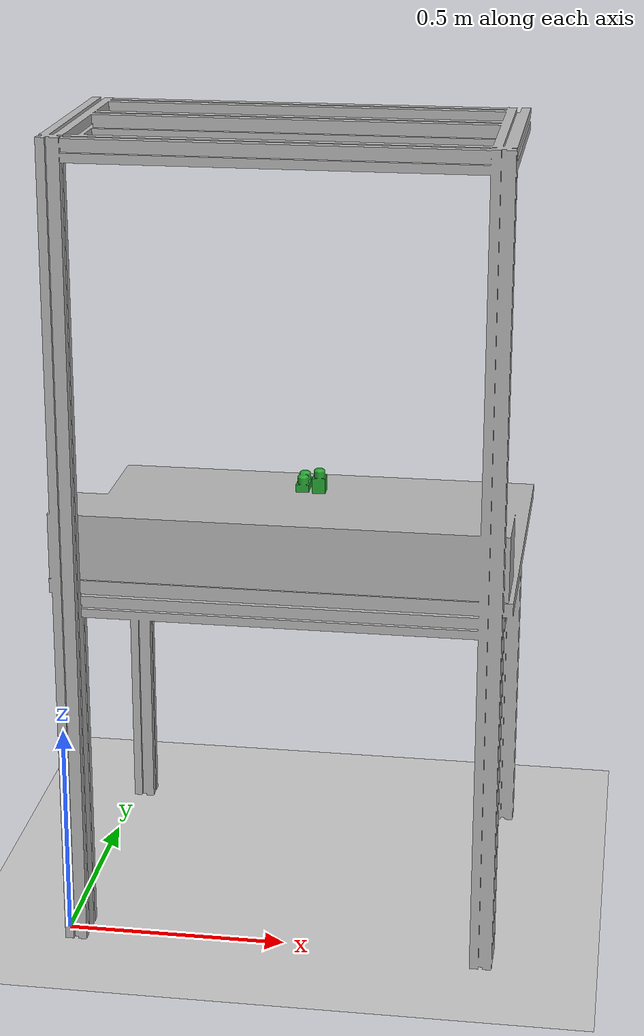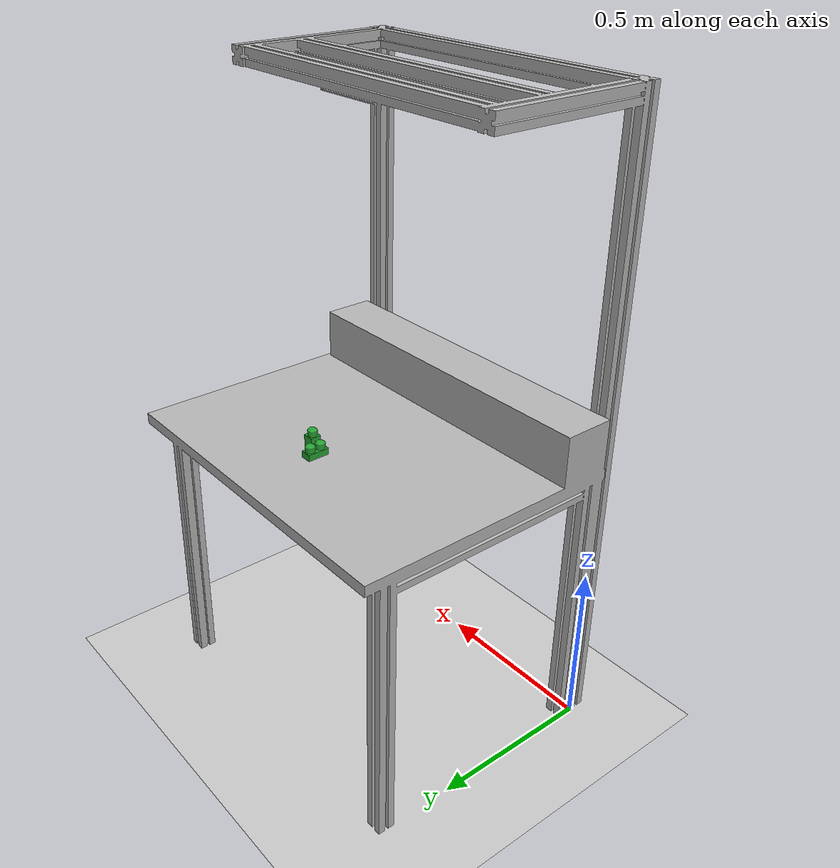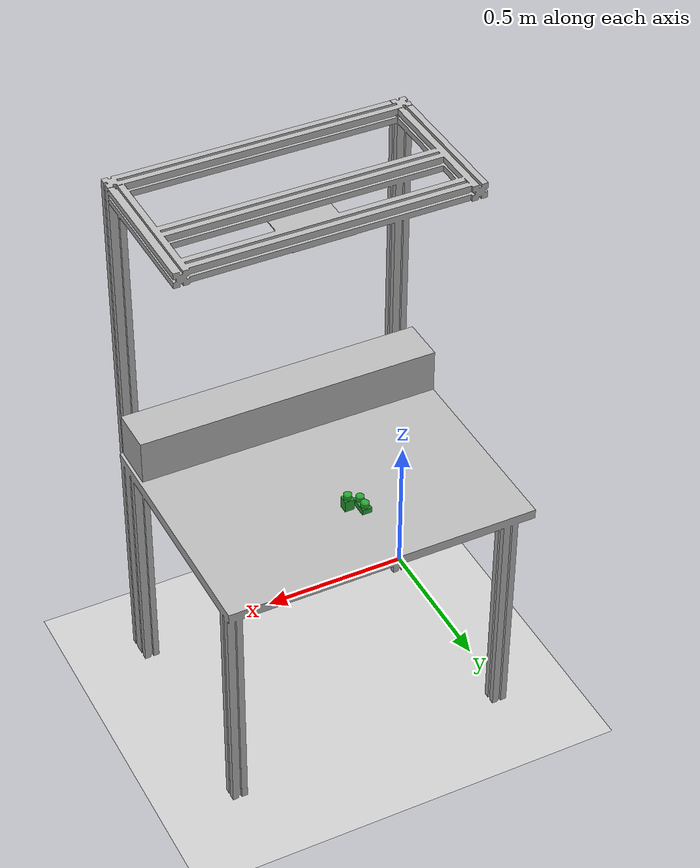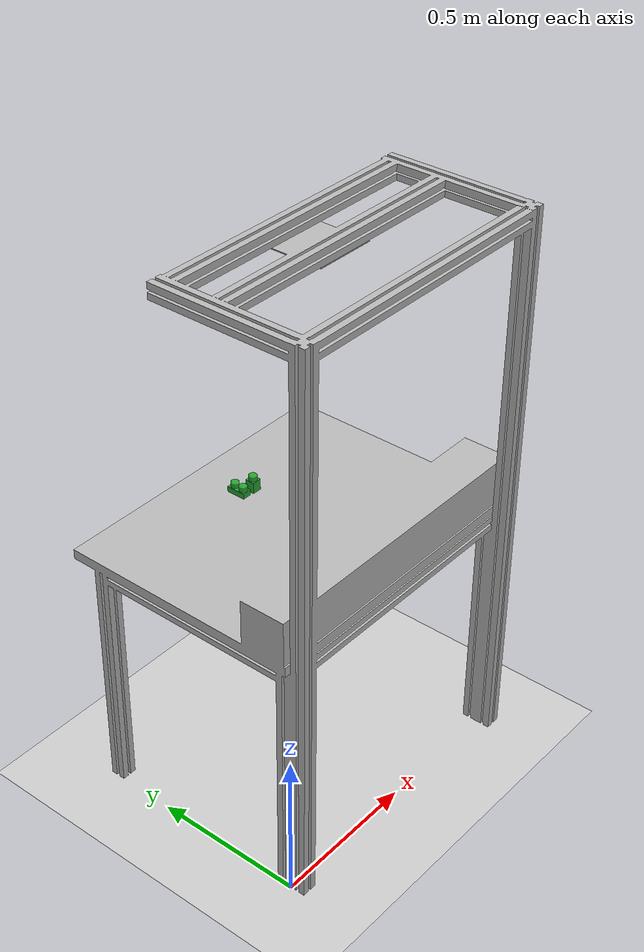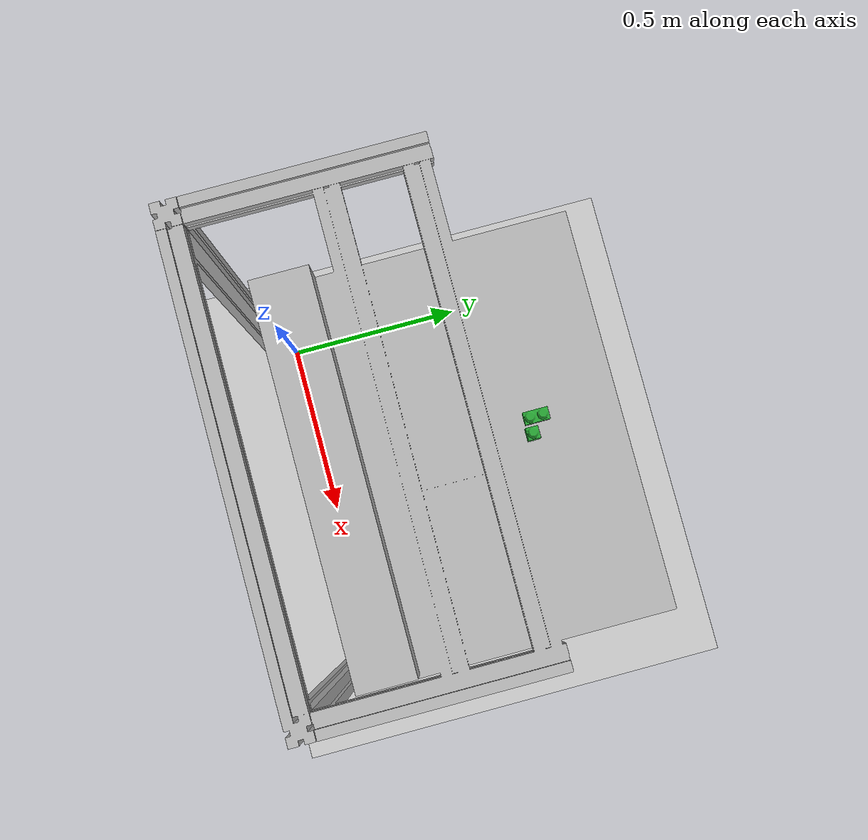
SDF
<sdf version="1.4">
  <world name="default">
    <physics type="ode">
      <gravity>0 0 -9.81</gravity>

      <max_step_size>0.001</max_step_size>
      <real_time_factor>1</real_time_factor>
    </physics>

    <include>
      <uri>model://sun</uri>
    </include>

    <gui>
    <camera name="gzclient_camera">
      <pose>1. 3.2 2.2 0. 0.4 -1.75</pose>
    </camera>
    </gui>

    <include>
      <uri>model://ground_plane</uri>
    </include>
    <include>
      <name>tavolo</name>
      <uri>model://tavolo</uri>
      <pose>0.0 0.0 0.0 0 0 0</pose>
    </include>

    <include>
      <name>X1-Y1-Z2</name>
      <uri>model://X1-Y1-Z2</uri>

      <pose>0.5 0.57 0.9 0 0 0</pose>
    </include>

    <include>
      <name>X1-Y2-Z1</name>
      <uri>model://X1-Y2-Z1</uri>

      <pose>0.46 0.59 0.9 0 0 0</pose>
    </include>

  </world>
</sdf>

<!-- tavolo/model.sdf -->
<sdf version="1.4">

<physics type="ode">

      <ode>

        <constraints>
          <contact_max_correcting_vel>0.1</contact_max_correcting_vel>
          <contact_surface_layer>0.0001</contact_surface_layer>
        </constraints>
      </ode>
	<max_contacts>10</max_contacts>
	</physics>

	<model name="tavolo">
	    <static>true</static>
		<link name="link">

		     <collision name="base">
			<pose>0.5 0.4 0.85 0 0 0</pose>
			<geometry>
			  <box>
			    <size>1 0.8 0.04</size>
			  </box>
			</geometry>

				<!-- see https://gazebosim.org/tutorials?tut=physics_params&cat=physics-->
				 <surface>
				  <bounce>
				    <restitution_coefficient>0.01</restitution_coefficient>
				    <threshold>5.0</threshold>
				  </bounce>
				  <friction>
				    <ode>
				      <mu>10</mu>
				      <mu2>10</mu2>
				    </ode>
				  </friction>
				  <contact>
				     <ode>
					<max_vel>0.1</max_vel>
					<min_depth>0.001</min_depth>
				        <kp>1000000.0</kp>
					<kd>1000.0</kd>
				      </ode>
			            </contact>
				</surface>

		     	</collision>

	     			<collision name="box">
				<pose>0.5 0.08 0.95 0 0 0</pose>
				<geometry>
				  <box>
				    <size>1 0.15 0.15</size>
				  </box>
				</geometry>

				 <surface>
				  <bounce>
				    <restitution_coefficient>0.01</restitution_coefficient>
				    <threshold>5.0</threshold>
				  </bounce>
				  <friction>
				    <ode>
				      <mu>10</mu>
				      <mu2>10</mu2>
				    </ode>
				  </friction>
				  <contact>
				     <ode>
					<max_vel>0.1</max_vel>
					<min_depth>0.001</min_depth>
				        <kp>1000000.0</kp>
					<kd>1000.0</kd>
				      </ode>
			            </contact>
				</surface>

			      </collision>

			   <collision name="back">
				<pose>0.5 -0.02 1.35 1.57 0 0</pose>
				<geometry>
				  <box>
				    <size>1 1.0 0.04</size>
				  </box>
				</geometry>

				 <surface>
				  <bounce>
				    <restitution_coefficient>0.01</restitution_coefficient>
				    <threshold>5.0</threshold>
				  </bounce>
				  <friction>
				    <ode>
				      <mu>10</mu>
				      <mu2>10</mu2>
				    </ode>
				  </friction>
				  <contact>
				     <ode>
					<max_vel>0.1</max_vel>
					<min_depth>0.001</min_depth>
				        <kp>1000000.0</kp>
					<kd>1000.0</kd>
				      </ode>
			            </contact>
				</surface>

			      </collision>

			<visual name="visual">
				<geometry>
					<mesh>
						<uri>model://tavolo/mesh/tavolo.stl</uri>
                                                <scale>0.001 0.001 0.001</scale>
					</mesh>
				</geometry>
			</visual>
		</link>
	</model>
</sdf>

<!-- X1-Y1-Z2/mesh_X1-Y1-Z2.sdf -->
<sdf version="1.6">

         <model name="mesh_X1-Y1-Z2">
             <static>0</static>
             <self_collide>0</self_collide>
             <allow_auto_disable>1</allow_auto_disable>

             <pose>0 0 0 0 -0 0</pose>

             <link name="link">

                 <gravity>1</gravity>
                 <self_collide>0</self_collide>
                 <kinematic>0</kinematic>

                 <inertial>
                    <!-- Volume:  7.9747940000e-06 -->
                    <mass> 1.0 </mass>

                    <!-- Center of mass:  1.4400000000e-06 -5.0000000000e-08  2.7859970000e-02 -->
                    <pose>  1.4400000000e-06 -5.0000000000e-08  2.7859970000e-02 0 0 0 </pose>

                    <!-- Inertia matrix -->
                    <inertia>
                        <ixx>  3.8954745414e-04 </ixx>
                        <ixy>  3.3856673915e-10 </ixy>
                        <ixz> -3.0082281749e-08 </ixz>
                        <iyy>  3.8955472706e-04 </iyy>
                        <iyz> -2.9217055638e-09 </iyz>
                        <izz>  2.4825571670e-04 </izz>
                    </inertia>
                </inertial>

                 <collision name="collision">
                     <!--
                         Maximum number of contacts allowed between two entities.
                         This value overrides the max_contacts element defined in physics.
                     -->
                     <max_contacts>20</max_contacts>

                    <pose>0 0 0 0 -0 0</pose>

                     <geometry>
                         <mesh>
                             <uri>model://X1-Y1-Z2/mesh/X1-Y1-Z2.stl</uri>
                             <!-- Scaling factor applied to the mesh -->
                             <scale>1.0 1.0 1.0</scale>
                         </mesh>
                     </geometry>
                     <!-- http://sdformat.org/spec?ver=1.6&elem=collision#surface_soft_contact -->
                     <surface></surface>
                 </collision>

                 <visual name="visual">
                     <cast_shadows>1</cast_shadows>
                     <transparency>0</transparency>

                    <pose>0 0 0 0 -0 0</pose>
                     <material>

                         <script>
                             <uri>file://media/materials/scripts/gazebo.material</uri>
                             <name>Gazebo/Green</name>
                         </script>
                         <shader type="vertex">
                           <normal_map>__default__</normal_map>
                         </shader>

                         <lighting>1</lighting>
 		                <ambient>0.15 0.75 0.35 1</ambient>
 		                <diffuse>0.1 0.95 0.25 1</diffuse>
 		                <specular>0.01 0.01 0.01 1</specular>
 		                <emissive>0 0 0 1</emissive>
                     </material>

                     <geometry>
                         <mesh>
                             <uri>model://X1-Y1-Z2/mesh/X1-Y1-Z2.stl</uri>
                             <!-- Scaling factor applied to the mesh -->
                             <scale>1.0 1.0 1.0</scale>
                         </mesh>
                     </geometry>
                 </visual>
             </link>
         </model>
     </sdf>

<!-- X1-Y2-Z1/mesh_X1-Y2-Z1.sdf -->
<sdf version="1.6">

         <model name="mesh_X1-Y2-Z1">
             <static>0</static>
             <self_collide>0</self_collide>
             <allow_auto_disable>1</allow_auto_disable>

             <pose>0 0 0 0 -0 0</pose>

             <link name="link">

                 <gravity>1</gravity>
                 <self_collide>0</self_collide>
                 <kinematic>0</kinematic>

                 <inertial>
                    <!-- Volume:  9.9160310000e-06 -->
                    <mass> 1.0 </mass>

                    <!-- Center of mass:  6.0000000000e-07  4.5600000000e-06  1.9002950000e-02 -->
                    <pose>  6.0000000000e-07  4.5600000000e-06  1.9002950000e-02 0 0 0 </pose>

                    <!-- Inertia matrix -->
                    <inertia>
                        <ixx>  5.1220598241e-04 </ixx>
                        <ixy>  5.0978057652e-08 </ixy>
                        <ixz> -3.7212469384e-09 </ixz>
                        <iyy>  2.3708169125e-04 </iyy>
                        <iyz> -5.1441952935e-08 </iyz>
                        <izz>  5.0510161777e-04 </izz>
                    </inertia>
                </inertial>

                 <collision name="collision">
                     <!--
                         Maximum number of contacts allowed between two entities.
                         This value overrides the max_contacts element defined in physics.
                     -->
                     <max_contacts>20</max_contacts>

                    <pose>0 0 0 0 -0 0</pose>

                     <geometry>
                         <mesh>
                             <uri>model://X1-Y2-Z1/mesh.stl</uri>
                             <!-- Scaling factor applied to the mesh -->
                             <scale>1.0 1.0 1.0</scale>
                         </mesh>
                     </geometry>
                     <!-- http://sdformat.org/spec?ver=1.6&elem=collision#surface_soft_contact -->
                     <surface></surface>
                 </collision>

                 <visual name="visual">
                     <cast_shadows>1</cast_shadows>
                     <transparency>0</transparency>

                    <pose>0 0 0 0 -0 0</pose>

                     <material>

                         <script>
                             <uri>file://media/materials/scripts/gazebo.material</uri>
                             <name>Gazebo/Green</name>
                         </script>
                         <shader type="vertex">
                           <normal_map>__default__</normal_map>
                         </shader>

                         <lighting>1</lighting>
 		                <ambient>0.15 0.75 0.35 1</ambient>
 		                <diffuse>0.1 0.95 0.25 1</diffuse>
 		                <specular>0.01 0.01 0.01 1</specular>
 		                <emissive>0 0 0 1</emissive>
                     </material>

                     <geometry>
                         <mesh>
                             <uri>model://X1-Y2-Z1/mesh/X1-Y2-Z1.stl</uri>
                             <!-- Scaling factor applied to the mesh -->
                             <scale>1.0 1.0 1.0</scale>
                         </mesh>
                     </geometry>
                 </visual>
             </link>
         </model>
     </sdf>
